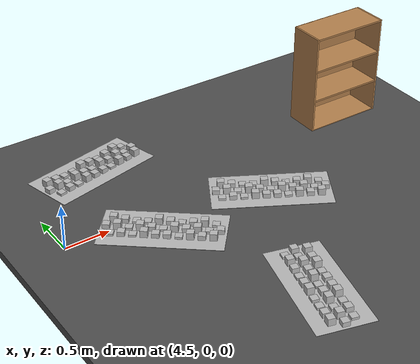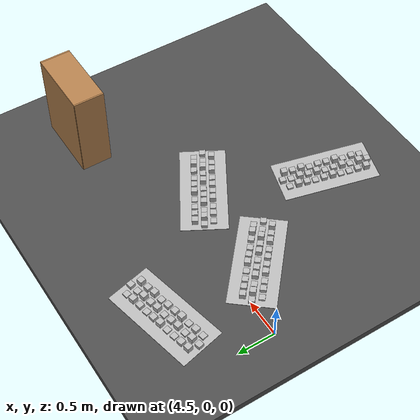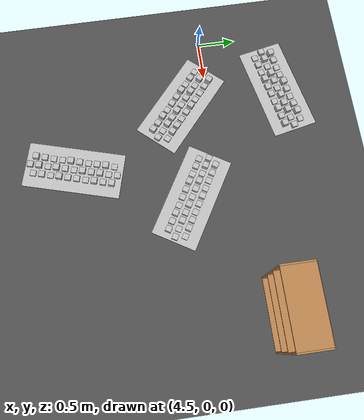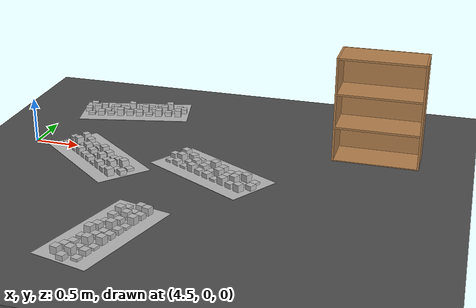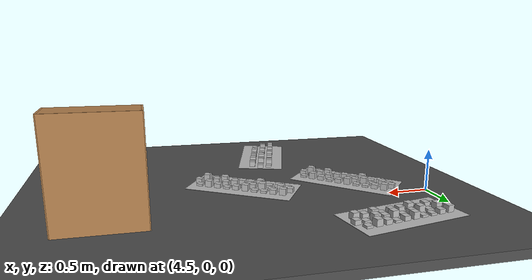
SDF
<sdf version="1.6">
 <world name="default">
  <model name="ground_plane">
   <static>1</static>
   <link name="link">
    <collision name="collision">
     <geometry><plane><normal>0 0 1</normal><size>100 100</size></plane></geometry>
     <surface>
      <contact><collide_bitmask>65535</collide_bitmask></contact>
      <friction><ode><mu>100</mu><mu2>50</mu2></ode></friction>
     </surface>
    </collision>
    <visual name="visual">
     <cast_shadows>0</cast_shadows>
     <geometry><plane><normal>0 0 1</normal><size>100 100</size></plane></geometry>
     <material>
      <script><uri>file://media/materials/scripts/gazebo.material</uri><name>Gazebo/Grey</name></script>
     </material>
    </visual>
   </link>
  </model>
  <model name="frc2016_roughterrain_clone_2_clone_clone_2">
   <static>1</static>
   <link name="link">
    <visual name="platform">
     <pose>0 0 0.08269 0 -0 0</pose>
     <geometry><box><size>1.27 0.5969 0.003175</size></box></geometry>
    </visual>
    <collision name="platform">
     <pose>0 0 0.08269 0 -0 0</pose>
     <geometry><box><size>1.27 0.5969 0.003175</size></box></geometry>
    </collision>
    <visual name="row1_block1_sm">
     <pose>0.51435 0.1143 0.09698 0 -0 0</pose>
     <geometry><box><size>0.0762 0.0762 0.0254</size></box></geometry>
    </visual>
    <collision name="row1_block1_sm">
     <pose>0.51435 0.1143 0.09698 0 -0 0</pose>
     <geometry><box><size>0.0762 0.0762 0.0254</size></box></geometry>
    </collision>
    <visual name="row1_block2_lg">
     <pose>0.40005 0.1143 0.12238 0 -0 0</pose>
     <geometry><box><size>0.0762 0.0762 0.0762</size></box></geometry>
    </visual>
    <collision name="row1_block2_lg">
     <pose>0.40005 0.1143 0.12238 0 -0 0</pose>
     <geometry><box><size>0.0762 0.0762 0.0762</size></box></geometry>
    </collision>
    <visual name="row1_block3_md">
     <pose>0.28575 0.1143 0.10968 0 -0 0</pose>
     <geometry><box><size>0.0762 0.0762 0.0508</size></box></geometry>
    </visual>
    <collision name="row1_block3_md">
     <pose>0.28575 0.1143 0.10968 0 -0 0</pose>
     <geometry><box><size>0.0762 0.0762 0.0508</size></box></geometry>
    </collision>
    <visual name="row1_block4_sm">
     <pose>0.17145 0.1143 0.09698 0 -0 0</pose>
     <geometry><box><size>0.0762 0.0762 0.0254</size></box></geometry>
    </visual>
    <collision name="row1_block4_sm">
     <pose>0.17145 0.1143 0.09698 0 -0 0</pose>
     <geometry><box><size>0.0762 0.0762 0.0254</size></box></geometry>
    </collision>
    <visual name="row1_block5_md">
     <pose>0.05715 0.1143 0.10968 0 -0 0</pose>
     <geometry><box><size>0.0762 0.0762 0.0508</size></box></geometry>
    </visual>
    <collision name="row1_block5_md">
     <pose>0.05715 0.1143 0.10968 0 -0 0</pose>
     <geometry><box><size>0.0762 0.0762 0.0508</size></box></geometry>
    </collision>
    <visual name="row1_block6_lg">
     <pose>-0.05715 0.1143 0.12238 0 -0 0</pose>
     <geometry><box><size>0.0762 0.0762 0.0762</size></box></geometry>
    </visual>
    <collision name="row1_block6_lg">
     <pose>-0.05715 0.1143 0.12238 0 -0 0</pose>
     <geometry><box><size>0.0762 0.0762 0.0762</size></box></geometry>
    </collision>
    <visual name="row1_block7_sm">
     <pose>-0.17145 0.1143 0.09698 0 -0 0</pose>
     <geometry><box><size>0.0762 0.0762 0.0254</size></box></geometry>
    </visual>
    <collision name="row1_block7_sm">
     <pose>-0.17145 0.1143 0.09698 0 -0 0</pose>
     <geometry><box><size>0.0762 0.0762 0.0254</size></box></geometry>
    </collision>
    <visual name="row1_block8_sm">
     <pose>-0.28575 0.1143 0.09698 0 -0 0</pose>
     <geometry><box><size>0.0762 0.0762 0.0254</size></box></geometry>
    </visual>
    <collision name="row1_block8_sm">
     <pose>-0.28575 0.1143 0.09698 0 -0 0</pose>
     <geometry><box><size>0.0762 0.0762 0.0254</size></box></geometry>
    </collision>
    <visual name="row1_block9_md">
     <pose>-0.40005 0.1143 0.10968 0 -0 0</pose>
     <geometry><box><size>0.0762 0.0762 0.0508</size></box></geometry>
    </visual>
    <collision name="row1_block9_md">
     <pose>-0.40005 0.1143 0.10968 0 -0 0</pose>
     <geometry><box><size>0.0762 0.0762 0.0508</size></box></geometry>
    </collision>
    <visual name="row1_block10_lg">
     <pose>-0.51435 0.1143 0.12238 0 -0 0</pose>
     <geometry><box><size>0.0762 0.0762 0.0762</size></box></geometry>
    </visual>
    <collision name="row1_block10_lg">
     <pose>-0.51435 0.1143 0.12238 0 -0 0</pose>
     <geometry><box><size>0.0762 0.0762 0.0762</size></box></geometry>
    </collision>
    <visual name="row2_block1_md">
     <pose>0.5715 0 0.10968 0 -0 0</pose>
     <geometry><box><size>0.0762 0.0762 0.0508</size></box></geometry>
    </visual>
    <collision name="row2_block1_md">
     <pose>0.5715 0 0.10968 0 -0 0</pose>
     <geometry><box><size>0.0762 0.0762 0.0508</size></box></geometry>
    </collision>
    <visual name="row2_block2_sm">
     <pose>0.4572 0 0.09698 0 -0 0</pose>
     <geometry><box><size>0.0762 0.0762 0.0254</size></box></geometry>
    </visual>
    <collision name="row2_block2_sm">
     <pose>0.4572 0 0.09698 0 -0 0</pose>
     <geometry><box><size>0.0762 0.0762 0.0254</size></box></geometry>
    </collision>
    <visual name="row2_block3_lg">
     <pose>0.3429 0 0.12238 0 -0 0</pose>
     <geometry><box><size>0.0762 0.0762 0.0762</size></box></geometry>
    </visual>
    <collision name="row2_block3_lg">
     <pose>0.3429 0 0.12238 0 -0 0</pose>
     <geometry><box><size>0.0762 0.0762 0.0762</size></box></geometry>
    </collision>
    <visual name="row2_block4_md">
     <pose>0.2286 0 0.10968 0 -0 0</pose>
     <geometry><box><size>0.0762 0.0762 0.0508</size></box></geometry>
    </visual>
    <collision name="row2_block4_md">
     <pose>0.2286 0 0.10968 0 -0 0</pose>
     <geometry><box><size>0.0762 0.0762 0.0508</size></box></geometry>
    </collision>
    <visual name="row2_block5_lg">
     <pose>0.1143 0 0.12238 0 -0 0</pose>
     <geometry><box><size>0.0762 0.0762 0.0762</size></box></geometry>
    </visual>
    <collision name="row2_block5_lg">
     <pose>0.1143 0 0.12238 0 -0 0</pose>
     <geometry><box><size>0.0762 0.0762 0.0762</size></box></geometry>
    </collision>
    <visual name="row2_block6_sm">
     <pose>0 0 0.09698 0 -0 0</pose>
     <geometry><box><size>0.0762 0.0762 0.0254</size></box></geometry>
    </visual>
    <collision name="row2_block6_sm">
     <pose>0 0 0.09698 0 -0 0</pose>
     <geometry><box><size>0.0762 0.0762 0.0254</size></box></geometry>
    </collision>
    <visual name="row2_block7_md">
     <pose>-0.1143 0 0.10968 0 -0 0</pose>
     <geometry><box><size>0.0762 0.0762 0.0508</size></box></geometry>
    </visual>
    <collision name="row2_block7_md">
     <pose>-0.1143 0 0.10968 0 -0 0</pose>
     <geometry><box><size>0.0762 0.0762 0.0508</size></box></geometry>
    </collision>
    <visual name="row2_block8_lg">
     <pose>-0.2286 0 0.12238 0 -0 0</pose>
     <geometry><box><size>0.0762 0.0762 0.0762</size></box></geometry>
    </visual>
    <collision name="row2_block8_lg">
     <pose>-0.2286 0 0.12238 0 -0 0</pose>
     <geometry><box><size>0.0762 0.0762 0.0762</size></box></geometry>
    </collision>
    <visual name="row2_block9_sm">
     <pose>-0.3429 0 0.09698 0 -0 0</pose>
     <geometry><box><size>0.0762 0.0762 0.0254</size></box></geometry>
    </visual>
    <collision name="row2_block9_sm">
     <pose>-0.3429 0 0.09698 0 -0 0</pose>
     <geometry><box><size>0.0762 0.0762 0.0254</size></box></geometry>
    </collision>
    <visual name="row2_block10_lg">
     <pose>-0.4572 0 0.12238 0 -0 0</pose>
     <geometry><box><size>0.0762 0.0762 0.0762</size></box></geometry>
    </visual>
    <collision name="row2_block10_lg">
     <pose>-0.4572 0 0.12238 0 -0 0</pose>
     <geometry><box><size>0.0762 0.0762 0.0762</size></box></geometry>
    </collision>
    <visual name="row2_block11_md">
     <pose>-0.5715 0 0.10968 0 -0 0</pose>
     <geometry><box><size>0.0762 0.0762 0.0508</size></box></geometry>
    </visual>
    <collision name="row2_block11_md">
     <pose>-0.5715 0 0.10968 0 -0 0</pose>
     <geometry><box><size>0.0762 0.0762 0.0508</size></box></geometry>
    </collision>
    <visual name="row3_block1_lg">
     <pose>0.51435 -0.1143 0.12238 0 -0 0</pose>
     <geometry><box><size>0.0762 0.0762 0.0762</size></box></geometry>
    </visual>
    <collision name="row3_block1_lg">
     <pose>0.51435 -0.1143 0.12238 0 -0 0</pose>
     <geometry><box><size>0.0762 0.0762 0.0762</size></box></geometry>
    </collision>
    <visual name="row3_block2_md">
     <pose>0.40005 -0.1143 0.10968 0 -0 0</pose>
     <geometry><box><size>0.0762 0.0762 0.0508</size></box></geometry>
    </visual>
    <collision name="row3_block2_md">
     <pose>0.40005 -0.1143 0.10968 0 -0 0</pose>
     <geometry><box><size>0.0762 0.0762 0.0508</size></box></geometry>
    </collision>
    <visual name="row3_block3_lg">
     <pose>0.28575 -0.1143 0.12238 0 -0 0</pose>
     <geometry><box><size>0.0762 0.0762 0.0762</size></box></geometry>
    </visual>
    <collision name="row3_block3_lg">
     <pose>0.28575 -0.1143 0.12238 0 -0 0</pose>
     <geometry><box><size>0.0762 0.0762 0.0762</size></box></geometry>
    </collision>
    <visual name="row3_block4_sm">
     <pose>0.17145 -0.1143 0.09698 0 -0 0</pose>
     <geometry><box><size>0.0762 0.0762 0.0254</size></box></geometry>
    </visual>
    <collision name="row3_block4_sm">
     <pose>0.17145 -0.1143 0.09698 0 -0 0</pose>
     <geometry><box><size>0.0762 0.0762 0.0254</size></box></geometry>
    </collision>
    <visual name="row3_block5_md">
     <pose>0.05715 -0.1143 0.10968 0 -0 0</pose>
     <geometry><box><size>0.0762 0.0762 0.0508</size></box></geometry>
    </visual>
    <collision name="row3_block5_md">
     <pose>0.05715 -0.1143 0.10968 0 -0 0</pose>
     <geometry><box><size>0.0762 0.0762 0.0508</size></box></geometry>
    </collision>
    <visual name="row3_block6_md">
     <pose>-0.05715 -0.1143 0.10968 0 -0 0</pose>
     <geometry><box><size>0.0762 0.0762 0.0508</size></box></geometry>
    </visual>
    <collision name="row3_block6_md">
     <pose>-0.05715 -0.1143 0.10968 0 -0 0</pose>
     <geometry><box><size>0.0762 0.0762 0.0508</size></box></geometry>
    </collision>
    <visual name="row3_block7_lg">
     <pose>-0.17145 -0.1143 0.12238 0 -0 0</pose>
     <geometry><box><size>0.0762 0.0762 0.0762</size></box></geometry>
    </visual>
    <collision name="row3_block7_lg">
     <pose>-0.17145 -0.1143 0.12238 0 -0 0</pose>
     <geometry><box><size>0.0762 0.0762 0.0762</size></box></geometry>
    </collision>
    <visual name="row3_block8_sm">
     <pose>-0.28575 -0.1143 0.09698 0 -0 0</pose>
     <geometry><box><size>0.0762 0.0762 0.0254</size></box></geometry>
    </visual>
    <collision name="row3_block8_sm">
     <pose>-0.28575 -0.1143 0.09698 0 -0 0</pose>
     <geometry><box><size>0.0762 0.0762 0.0254</size></box></geometry>
    </collision>
    <visual name="row3_block9_md">
     <pose>-0.40005 -0.1143 0.10968 0 -0 0</pose>
     <geometry><box><size>0.0762 0.0762 0.0508</size></box></geometry>
    </visual>
    <collision name="row3_block9_md">
     <pose>-0.40005 -0.1143 0.10968 0 -0 0</pose>
     <geometry><box><size>0.0762 0.0762 0.0508</size></box></geometry>
    </collision>
    <visual name="row3_block10_sm">
     <pose>-0.51435 -0.1143 0.09698 0 -0 0</pose>
     <geometry><box><size>0.0762 0.0762 0.0254</size></box></geometry>
    </visual>
    <collision name="row3_block10_sm">
     <pose>-0.51435 -0.1143 0.09698 0 -0 0</pose>
     <geometry><box><size>0.0762 0.0762 0.0254</size></box></geometry>
    </collision>
   </link>
   <pose>6.12707 -1.89244 0 -0.016637 0.033285 1.30479</pose>
  </model>
  <model name="bookshelf_1">
   <static>1</static>
   <link name="link">
    <inertial><mass>1</mass></inertial>
    <collision name="back">
     <pose>0 0.005 0.6 0 -0 0</pose>
     <geometry><box><size>0.9 0.01 1.2</size></box></geometry>
    </collision>
    <visual name="visual1">
     <pose>0 0.005 0.6 0 -0 0</pose>
     <geometry><box><size>0.9 0.01 1.2</size></box></geometry>
     <material>
      <script><uri>file://media/materials/scripts/gazebo.material</uri><name>Gazebo/Wood</name></script>
     </material>
    </visual>
    <collision name="left_side">
     <pose>0.45 -0.195 0.6 0 -0 0</pose>
     <geometry><box><size>0.02 0.4 1.2</size></box></geometry>
    </collision>
    <visual name="visual2">
     <pose>0.45 -0.195 0.6 0 -0 0</pose>
     <geometry><box><size>0.02 0.4 1.2</size></box></geometry>
     <material>
      <script><uri>file://media/materials/scripts/gazebo.material</uri><name>Gazebo/Wood</name></script>
     </material>
    </visual>
    <collision name="right_side">
     <pose>-0.45 -0.195 0.6 0 -0 0</pose>
     <geometry><box><size>0.02 0.4 1.2</size></box></geometry>
    </collision>
    <visual name="visual3">
     <pose>-0.45 -0.195 0.6 0 -0 0</pose>
     <geometry><box><size>0.02 0.4 1.2</size></box></geometry>
     <material>
      <script><uri>file://media/materials/scripts/gazebo.material</uri><name>Gazebo/Wood</name></script>
     </material>
    </visual>
    <collision name="bottom">
     <pose>0 -0.195 0.03 0 -0 0</pose>
     <geometry><box><size>0.88 0.4 0.06</size></box></geometry>
    </collision>
    <visual name="visual4">
     <pose>0 -0.195 0.03 0 -0 0</pose>
     <geometry><box><size>0.88 0.4 0.06</size></box></geometry>
     <material>
      <script><uri>file://media/materials/scripts/gazebo.material</uri><name>Gazebo/Wood</name></script>
     </material>
    </visual>
    <collision name="top">
     <pose>0 -0.195 1.19 0 -0 0</pose>
     <geometry><box><size>0.88 0.4 0.02</size></box></geometry>
    </collision>
    <visual name="visual5">
     <pose>0 -0.195 1.19 0 -0 0</pose>
     <geometry><box><size>0.88 0.4 0.02</size></box></geometry>
     <material>
      <script><uri>file://media/materials/scripts/gazebo.material</uri><name>Gazebo/Wood</name></script>
     </material>
    </visual>
    <collision name="low_shelf">
     <pose>0 -0.195 0.43 0 -0 0</pose>
     <geometry><box><size>0.88 0.4 0.02</size></box></geometry>
    </collision>
    <visual name="visual6">
     <pose>0 -0.195 0.43 0 -0 0</pose>
     <geometry><box><size>0.88 0.4 0.02</size></box></geometry>
     <material>
      <script><uri>file://media/materials/scripts/gazebo.material</uri><name>Gazebo/Wood</name></script>
     </material>
    </visual>
    <collision name="high_shelf">
     <pose>0 -0.195 0.8 0 -0 0</pose>
     <geometry><box><size>0.88 0.4 0.02</size></box></geometry>
    </collision>
    <visual name="visual7">
     <pose>0 -0.195 0.8 0 -0 0</pose>
     <geometry><box><size>0.88 0.4 0.02</size></box></geometry>
     <material>
      <script><uri>file://media/materials/scripts/gazebo.material</uri><name>Gazebo/Wood</name></script>
     </material>
    </visual>
   </link>
   <pose>8.28108 0.686251 0 0 -0 0</pose>
  </model>
  <model name="frc2016_roughterrain_clone_2_clone_clone_0_clone">
   <static>1</static>
   <link name="link">
    <visual name="platform">
     <pose>0 0 0.08269 0 -0 0</pose>
     <geometry><box><size>1.27 0.5969 0.003175</size></box></geometry>
    </visual>
    <collision name="platform">
     <pose>0 0 0.08269 0 -0 0</pose>
     <geometry><box><size>1.27 0.5969 0.003175</size></box></geometry>
    </collision>
    <visual name="row1_block1_sm">
     <pose>0.51435 0.1143 0.09698 0 -0 0</pose>
     <geometry><box><size>0.0762 0.0762 0.0254</size></box></geometry>
    </visual>
    <collision name="row1_block1_sm">
     <pose>0.51435 0.1143 0.09698 0 -0 0</pose>
     <geometry><box><size>0.0762 0.0762 0.0254</size></box></geometry>
    </collision>
    <visual name="row1_block2_lg">
     <pose>0.40005 0.1143 0.12238 0 -0 0</pose>
     <geometry><box><size>0.0762 0.0762 0.0762</size></box></geometry>
    </visual>
    <collision name="row1_block2_lg">
     <pose>0.40005 0.1143 0.12238 0 -0 0</pose>
     <geometry><box><size>0.0762 0.0762 0.0762</size></box></geometry>
    </collision>
    <visual name="row1_block3_md">
     <pose>0.28575 0.1143 0.10968 0 -0 0</pose>
     <geometry><box><size>0.0762 0.0762 0.0508</size></box></geometry>
    </visual>
    <collision name="row1_block3_md">
     <pose>0.28575 0.1143 0.10968 0 -0 0</pose>
     <geometry><box><size>0.0762 0.0762 0.0508</size></box></geometry>
    </collision>
    <visual name="row1_block4_sm">
     <pose>0.17145 0.1143 0.09698 0 -0 0</pose>
     <geometry><box><size>0.0762 0.0762 0.0254</size></box></geometry>
    </visual>
    <collision name="row1_block4_sm">
     <pose>0.17145 0.1143 0.09698 0 -0 0</pose>
     <geometry><box><size>0.0762 0.0762 0.0254</size></box></geometry>
    </collision>
    <visual name="row1_block5_md">
     <pose>0.05715 0.1143 0.10968 0 -0 0</pose>
     <geometry><box><size>0.0762 0.0762 0.0508</size></box></geometry>
    </visual>
    <collision name="row1_block5_md">
     <pose>0.05715 0.1143 0.10968 0 -0 0</pose>
     <geometry><box><size>0.0762 0.0762 0.0508</size></box></geometry>
    </collision>
    <visual name="row1_block6_lg">
     <pose>-0.05715 0.1143 0.12238 0 -0 0</pose>
     <geometry><box><size>0.0762 0.0762 0.0762</size></box></geometry>
    </visual>
    <collision name="row1_block6_lg">
     <pose>-0.05715 0.1143 0.12238 0 -0 0</pose>
     <geometry><box><size>0.0762 0.0762 0.0762</size></box></geometry>
    </collision>
    <visual name="row1_block7_sm">
     <pose>-0.17145 0.1143 0.09698 0 -0 0</pose>
     <geometry><box><size>0.0762 0.0762 0.0254</size></box></geometry>
    </visual>
    <collision name="row1_block7_sm">
     <pose>-0.17145 0.1143 0.09698 0 -0 0</pose>
     <geometry><box><size>0.0762 0.0762 0.0254</size></box></geometry>
    </collision>
    <visual name="row1_block8_sm">
     <pose>-0.28575 0.1143 0.09698 0 -0 0</pose>
     <geometry><box><size>0.0762 0.0762 0.0254</size></box></geometry>
    </visual>
    <collision name="row1_block8_sm">
     <pose>-0.28575 0.1143 0.09698 0 -0 0</pose>
     <geometry><box><size>0.0762 0.0762 0.0254</size></box></geometry>
    </collision>
    <visual name="row1_block9_md">
     <pose>-0.40005 0.1143 0.10968 0 -0 0</pose>
     <geometry><box><size>0.0762 0.0762 0.0508</size></box></geometry>
    </visual>
    <collision name="row1_block9_md">
     <pose>-0.40005 0.1143 0.10968 0 -0 0</pose>
     <geometry><box><size>0.0762 0.0762 0.0508</size></box></geometry>
    </collision>
    <visual name="row1_block10_lg">
     <pose>-0.51435 0.1143 0.12238 0 -0 0</pose>
     <geometry><box><size>0.0762 0.0762 0.0762</size></box></geometry>
    </visual>
    <collision name="row1_block10_lg">
     <pose>-0.51435 0.1143 0.12238 0 -0 0</pose>
     <geometry><box><size>0.0762 0.0762 0.0762</size></box></geometry>
    </collision>
    <visual name="row2_block1_md">
     <pose>0.5715 0 0.10968 0 -0 0</pose>
     <geometry><box><size>0.0762 0.0762 0.0508</size></box></geometry>
    </visual>
    <collision name="row2_block1_md">
     <pose>0.5715 0 0.10968 0 -0 0</pose>
     <geometry><box><size>0.0762 0.0762 0.0508</size></box></geometry>
    </collision>
    <visual name="row2_block2_sm">
     <pose>0.4572 0 0.09698 0 -0 0</pose>
     <geometry><box><size>0.0762 0.0762 0.0254</size></box></geometry>
    </visual>
    <collision name="row2_block2_sm">
     <pose>0.4572 0 0.09698 0 -0 0</pose>
     <geometry><box><size>0.0762 0.0762 0.0254</size></box></geometry>
    </collision>
    <visual name="row2_block3_lg">
     <pose>0.3429 0 0.12238 0 -0 0</pose>
     <geometry><box><size>0.0762 0.0762 0.0762</size></box></geometry>
    </visual>
    <collision name="row2_block3_lg">
     <pose>0.3429 0 0.12238 0 -0 0</pose>
     <geometry><box><size>0.0762 0.0762 0.0762</size></box></geometry>
    </collision>
    <visual name="row2_block4_md">
     <pose>0.2286 0 0.10968 0 -0 0</pose>
     <geometry><box><size>0.0762 0.0762 0.0508</size></box></geometry>
    </visual>
    <collision name="row2_block4_md">
     <pose>0.2286 0 0.10968 0 -0 0</pose>
     <geometry><box><size>0.0762 0.0762 0.0508</size></box></geometry>
    </collision>
    <visual name="row2_block5_lg">
     <pose>0.1143 0 0.12238 0 -0 0</pose>
     <geometry><box><size>0.0762 0.0762 0.0762</size></box></geometry>
    </visual>
    <collision name="row2_block5_lg">
     <pose>0.1143 0 0.12238 0 -0 0</pose>
     <geometry><box><size>0.0762 0.0762 0.0762</size></box></geometry>
    </collision>
    <visual name="row2_block6_sm">
     <pose>0 0 0.09698 0 -0 0</pose>
     <geometry><box><size>0.0762 0.0762 0.0254</size></box></geometry>
    </visual>
    <collision name="row2_block6_sm">
     <pose>0 0 0.09698 0 -0 0</pose>
     <geometry><box><size>0.0762 0.0762 0.0254</size></box></geometry>
    </collision>
    <visual name="row2_block7_md">
     <pose>-0.1143 0 0.10968 0 -0 0</pose>
     <geometry><box><size>0.0762 0.0762 0.0508</size></box></geometry>
    </visual>
    <collision name="row2_block7_md">
     <pose>-0.1143 0 0.10968 0 -0 0</pose>
     <geometry><box><size>0.0762 0.0762 0.0508</size></box></geometry>
    </collision>
    <visual name="row2_block8_lg">
     <pose>-0.2286 0 0.12238 0 -0 0</pose>
     <geometry><box><size>0.0762 0.0762 0.0762</size></box></geometry>
    </visual>
    <collision name="row2_block8_lg">
     <pose>-0.2286 0 0.12238 0 -0 0</pose>
     <geometry><box><size>0.0762 0.0762 0.0762</size></box></geometry>
    </collision>
    <visual name="row2_block9_sm">
     <pose>-0.3429 0 0.09698 0 -0 0</pose>
     <geometry><box><size>0.0762 0.0762 0.0254</size></box></geometry>
    </visual>
    <collision name="row2_block9_sm">
     <pose>-0.3429 0 0.09698 0 -0 0</pose>
     <geometry><box><size>0.0762 0.0762 0.0254</size></box></geometry>
    </collision>
    <visual name="row2_block10_lg">
     <pose>-0.4572 0 0.12238 0 -0 0</pose>
     <geometry><box><size>0.0762 0.0762 0.0762</size></box></geometry>
    </visual>
    <collision name="row2_block10_lg">
     <pose>-0.4572 0 0.12238 0 -0 0</pose>
     <geometry><box><size>0.0762 0.0762 0.0762</size></box></geometry>
    </collision>
    <visual name="row2_block11_md">
     <pose>-0.5715 0 0.10968 0 -0 0</pose>
     <geometry><box><size>0.0762 0.0762 0.0508</size></box></geometry>
    </visual>
    <collision name="row2_block11_md">
     <pose>-0.5715 0 0.10968 0 -0 0</pose>
     <geometry><box><size>0.0762 0.0762 0.0508</size></box></geometry>
    </collision>
    <visual name="row3_block1_lg">
     <pose>0.51435 -0.1143 0.12238 0 -0 0</pose>
     <geometry><box><size>0.0762 0.0762 0.0762</size></box></geometry>
    </visual>
    <collision name="row3_block1_lg">
     <pose>0.51435 -0.1143 0.12238 0 -0 0</pose>
     <geometry><box><size>0.0762 0.0762 0.0762</size></box></geometry>
    </collision>
    <visual name="row3_block2_md">
     <pose>0.40005 -0.1143 0.10968 0 -0 0</pose>
     <geometry><box><size>0.0762 0.0762 0.0508</size></box></geometry>
    </visual>
    <collision name="row3_block2_md">
     <pose>0.40005 -0.1143 0.10968 0 -0 0</pose>
     <geometry><box><size>0.0762 0.0762 0.0508</size></box></geometry>
    </collision>
    <visual name="row3_block3_lg">
     <pose>0.28575 -0.1143 0.12238 0 -0 0</pose>
     <geometry><box><size>0.0762 0.0762 0.0762</size></box></geometry>
    </visual>
    <collision name="row3_block3_lg">
     <pose>0.28575 -0.1143 0.12238 0 -0 0</pose>
     <geometry><box><size>0.0762 0.0762 0.0762</size></box></geometry>
    </collision>
    <visual name="row3_block4_sm">
     <pose>0.17145 -0.1143 0.09698 0 -0 0</pose>
     <geometry><box><size>0.0762 0.0762 0.0254</size></box></geometry>
    </visual>
    <collision name="row3_block4_sm">
     <pose>0.17145 -0.1143 0.09698 0 -0 0</pose>
     <geometry><box><size>0.0762 0.0762 0.0254</size></box></geometry>
    </collision>
    <visual name="row3_block5_md">
     <pose>0.05715 -0.1143 0.10968 0 -0 0</pose>
     <geometry><box><size>0.0762 0.0762 0.0508</size></box></geometry>
    </visual>
    <collision name="row3_block5_md">
     <pose>0.05715 -0.1143 0.10968 0 -0 0</pose>
     <geometry><box><size>0.0762 0.0762 0.0508</size></box></geometry>
    </collision>
    <visual name="row3_block6_md">
     <pose>-0.05715 -0.1143 0.10968 0 -0 0</pose>
     <geometry><box><size>0.0762 0.0762 0.0508</size></box></geometry>
    </visual>
    <collision name="row3_block6_md">
     <pose>-0.05715 -0.1143 0.10968 0 -0 0</pose>
     <geometry><box><size>0.0762 0.0762 0.0508</size></box></geometry>
    </collision>
    <visual name="row3_block7_lg">
     <pose>-0.17145 -0.1143 0.12238 0 -0 0</pose>
     <geometry><box><size>0.0762 0.0762 0.0762</size></box></geometry>
    </visual>
    <collision name="row3_block7_lg">
     <pose>-0.17145 -0.1143 0.12238 0 -0 0</pose>
     <geometry><box><size>0.0762 0.0762 0.0762</size></box></geometry>
    </collision>
    <visual name="row3_block8_sm">
     <pose>-0.28575 -0.1143 0.09698 0 -0 0</pose>
     <geometry><box><size>0.0762 0.0762 0.0254</size></box></geometry>
    </visual>
    <collision name="row3_block8_sm">
     <pose>-0.28575 -0.1143 0.09698 0 -0 0</pose>
     <geometry><box><size>0.0762 0.0762 0.0254</size></box></geometry>
    </collision>
    <visual name="row3_block9_md">
     <pose>-0.40005 -0.1143 0.10968 0 -0 0</pose>
     <geometry><box><size>0.0762 0.0762 0.0508</size></box></geometry>
    </visual>
    <collision name="row3_block9_md">
     <pose>-0.40005 -0.1143 0.10968 0 -0 0</pose>
     <geometry><box><size>0.0762 0.0762 0.0508</size></box></geometry>
    </collision>
    <visual name="row3_block10_sm">
     <pose>-0.51435 -0.1143 0.09698 0 -0 0</pose>
     <geometry><box><size>0.0762 0.0762 0.0254</size></box></geometry>
    </visual>
    <collision name="row3_block10_sm">
     <pose>-0.51435 -0.1143 0.09698 0 -0 0</pose>
     <geometry><box><size>0.0762 0.0762 0.0254</size></box></geometry>
    </collision>
   </link>
   <pose>5.40477 -0.374463 0 -0.022852 -0.029369 -0.711774</pose>
  </model>
  <model name="frc2016_roughterrain_clone_2_clone_clone_3_clone_0">
   <static>1</static>
   <link name="link">
    <visual name="platform">
     <pose>0 0 0.08269 0 -0 0</pose>
     <geometry><box><size>1.27 0.5969 0.003175</size></box></geometry>
    </visual>
    <collision name="platform">
     <pose>0 0 0.08269 0 -0 0</pose>
     <geometry><box><size>1.27 0.5969 0.003175</size></box></geometry>
    </collision>
    <visual name="row1_block1_sm">
     <pose>0.51435 0.1143 0.09698 0 -0 0</pose>
     <geometry><box><size>0.0762 0.0762 0.0254</size></box></geometry>
    </visual>
    <collision name="row1_block1_sm">
     <pose>0.51435 0.1143 0.09698 0 -0 0</pose>
     <geometry><box><size>0.0762 0.0762 0.0254</size></box></geometry>
    </collision>
    <visual name="row1_block2_lg">
     <pose>0.40005 0.1143 0.12238 0 -0 0</pose>
     <geometry><box><size>0.0762 0.0762 0.0762</size></box></geometry>
    </visual>
    <collision name="row1_block2_lg">
     <pose>0.40005 0.1143 0.12238 0 -0 0</pose>
     <geometry><box><size>0.0762 0.0762 0.0762</size></box></geometry>
    </collision>
    <visual name="row1_block3_md">
     <pose>0.28575 0.1143 0.10968 0 -0 0</pose>
     <geometry><box><size>0.0762 0.0762 0.0508</size></box></geometry>
    </visual>
    <collision name="row1_block3_md">
     <pose>0.28575 0.1143 0.10968 0 -0 0</pose>
     <geometry><box><size>0.0762 0.0762 0.0508</size></box></geometry>
    </collision>
    <visual name="row1_block4_sm">
     <pose>0.17145 0.1143 0.09698 0 -0 0</pose>
     <geometry><box><size>0.0762 0.0762 0.0254</size></box></geometry>
    </visual>
    <collision name="row1_block4_sm">
     <pose>0.17145 0.1143 0.09698 0 -0 0</pose>
     <geometry><box><size>0.0762 0.0762 0.0254</size></box></geometry>
    </collision>
    <visual name="row1_block5_md">
     <pose>0.05715 0.1143 0.10968 0 -0 0</pose>
     <geometry><box><size>0.0762 0.0762 0.0508</size></box></geometry>
    </visual>
    <collision name="row1_block5_md">
     <pose>0.05715 0.1143 0.10968 0 -0 0</pose>
     <geometry><box><size>0.0762 0.0762 0.0508</size></box></geometry>
    </collision>
    <visual name="row1_block6_lg">
     <pose>-0.05715 0.1143 0.12238 0 -0 0</pose>
     <geometry><box><size>0.0762 0.0762 0.0762</size></box></geometry>
    </visual>
    <collision name="row1_block6_lg">
     <pose>-0.05715 0.1143 0.12238 0 -0 0</pose>
     <geometry><box><size>0.0762 0.0762 0.0762</size></box></geometry>
    </collision>
    <visual name="row1_block7_sm">
     <pose>-0.17145 0.1143 0.09698 0 -0 0</pose>
     <geometry><box><size>0.0762 0.0762 0.0254</size></box></geometry>
    </visual>
    <collision name="row1_block7_sm">
     <pose>-0.17145 0.1143 0.09698 0 -0 0</pose>
     <geometry><box><size>0.0762 0.0762 0.0254</size></box></geometry>
    </collision>
    <visual name="row1_block8_sm">
     <pose>-0.28575 0.1143 0.09698 0 -0 0</pose>
     <geometry><box><size>0.0762 0.0762 0.0254</size></box></geometry>
    </visual>
    <collision name="row1_block8_sm">
     <pose>-0.28575 0.1143 0.09698 0 -0 0</pose>
     <geometry><box><size>0.0762 0.0762 0.0254</size></box></geometry>
    </collision>
    <visual name="row1_block9_md">
     <pose>-0.40005 0.1143 0.10968 0 -0 0</pose>
     <geometry><box><size>0.0762 0.0762 0.0508</size></box></geometry>
    </visual>
    <collision name="row1_block9_md">
     <pose>-0.40005 0.1143 0.10968 0 -0 0</pose>
     <geometry><box><size>0.0762 0.0762 0.0508</size></box></geometry>
    </collision>
    <visual name="row1_block10_lg">
     <pose>-0.51435 0.1143 0.12238 0 -0 0</pose>
     <geometry><box><size>0.0762 0.0762 0.0762</size></box></geometry>
    </visual>
    <collision name="row1_block10_lg">
     <pose>-0.51435 0.1143 0.12238 0 -0 0</pose>
     <geometry><box><size>0.0762 0.0762 0.0762</size></box></geometry>
    </collision>
    <visual name="row2_block1_md">
     <pose>0.5715 0 0.10968 0 -0 0</pose>
     <geometry><box><size>0.0762 0.0762 0.0508</size></box></geometry>
    </visual>
    <collision name="row2_block1_md">
     <pose>0.5715 0 0.10968 0 -0 0</pose>
     <geometry><box><size>0.0762 0.0762 0.0508</size></box></geometry>
    </collision>
    <visual name="row2_block2_sm">
     <pose>0.4572 0 0.09698 0 -0 0</pose>
     <geometry><box><size>0.0762 0.0762 0.0254</size></box></geometry>
    </visual>
    <collision name="row2_block2_sm">
     <pose>0.4572 0 0.09698 0 -0 0</pose>
     <geometry><box><size>0.0762 0.0762 0.0254</size></box></geometry>
    </collision>
    <visual name="row2_block3_lg">
     <pose>0.3429 0 0.12238 0 -0 0</pose>
     <geometry><box><size>0.0762 0.0762 0.0762</size></box></geometry>
    </visual>
    <collision name="row2_block3_lg">
     <pose>0.3429 0 0.12238 0 -0 0</pose>
     <geometry><box><size>0.0762 0.0762 0.0762</size></box></geometry>
    </collision>
    <visual name="row2_block4_md">
     <pose>0.2286 0 0.10968 0 -0 0</pose>
     <geometry><box><size>0.0762 0.0762 0.0508</size></box></geometry>
    </visual>
    <collision name="row2_block4_md">
     <pose>0.2286 0 0.10968 0 -0 0</pose>
     <geometry><box><size>0.0762 0.0762 0.0508</size></box></geometry>
    </collision>
    <visual name="row2_block5_lg">
     <pose>0.1143 0 0.12238 0 -0 0</pose>
     <geometry><box><size>0.0762 0.0762 0.0762</size></box></geometry>
    </visual>
    <collision name="row2_block5_lg">
     <pose>0.1143 0 0.12238 0 -0 0</pose>
     <geometry><box><size>0.0762 0.0762 0.0762</size></box></geometry>
    </collision>
    <visual name="row2_block6_sm">
     <pose>0 0 0.09698 0 -0 0</pose>
     <geometry><box><size>0.0762 0.0762 0.0254</size></box></geometry>
    </visual>
    <collision name="row2_block6_sm">
     <pose>0 0 0.09698 0 -0 0</pose>
     <geometry><box><size>0.0762 0.0762 0.0254</size></box></geometry>
    </collision>
    <visual name="row2_block7_md">
     <pose>-0.1143 0 0.10968 0 -0 0</pose>
     <geometry><box><size>0.0762 0.0762 0.0508</size></box></geometry>
    </visual>
    <collision name="row2_block7_md">
     <pose>-0.1143 0 0.10968 0 -0 0</pose>
     <geometry><box><size>0.0762 0.0762 0.0508</size></box></geometry>
    </collision>
    <visual name="row2_block8_lg">
     <pose>-0.2286 0 0.12238 0 -0 0</pose>
     <geometry><box><size>0.0762 0.0762 0.0762</size></box></geometry>
    </visual>
    <collision name="row2_block8_lg">
     <pose>-0.2286 0 0.12238 0 -0 0</pose>
     <geometry><box><size>0.0762 0.0762 0.0762</size></box></geometry>
    </collision>
    <visual name="row2_block9_sm">
     <pose>-0.3429 0 0.09698 0 -0 0</pose>
     <geometry><box><size>0.0762 0.0762 0.0254</size></box></geometry>
    </visual>
    <collision name="row2_block9_sm">
     <pose>-0.3429 0 0.09698 0 -0 0</pose>
     <geometry><box><size>0.0762 0.0762 0.0254</size></box></geometry>
    </collision>
    <visual name="row2_block10_lg">
     <pose>-0.4572 0 0.12238 0 -0 0</pose>
     <geometry><box><size>0.0762 0.0762 0.0762</size></box></geometry>
    </visual>
    <collision name="row2_block10_lg">
     <pose>-0.4572 0 0.12238 0 -0 0</pose>
     <geometry><box><size>0.0762 0.0762 0.0762</size></box></geometry>
    </collision>
    <visual name="row2_block11_md">
     <pose>-0.5715 0 0.10968 0 -0 0</pose>
     <geometry><box><size>0.0762 0.0762 0.0508</size></box></geometry>
    </visual>
    <collision name="row2_block11_md">
     <pose>-0.5715 0 0.10968 0 -0 0</pose>
     <geometry><box><size>0.0762 0.0762 0.0508</size></box></geometry>
    </collision>
    <visual name="row3_block1_lg">
     <pose>0.51435 -0.1143 0.12238 0 -0 0</pose>
     <geometry><box><size>0.0762 0.0762 0.0762</size></box></geometry>
    </visual>
    <collision name="row3_block1_lg">
     <pose>0.51435 -0.1143 0.12238 0 -0 0</pose>
     <geometry><box><size>0.0762 0.0762 0.0762</size></box></geometry>
    </collision>
    <visual name="row3_block2_md">
     <pose>0.40005 -0.1143 0.10968 0 -0 0</pose>
     <geometry><box><size>0.0762 0.0762 0.0508</size></box></geometry>
    </visual>
    <collision name="row3_block2_md">
     <pose>0.40005 -0.1143 0.10968 0 -0 0</pose>
     <geometry><box><size>0.0762 0.0762 0.0508</size></box></geometry>
    </collision>
    <visual name="row3_block3_lg">
     <pose>0.28575 -0.1143 0.12238 0 -0 0</pose>
     <geometry><box><size>0.0762 0.0762 0.0762</size></box></geometry>
    </visual>
    <collision name="row3_block3_lg">
     <pose>0.28575 -0.1143 0.12238 0 -0 0</pose>
     <geometry><box><size>0.0762 0.0762 0.0762</size></box></geometry>
    </collision>
    <visual name="row3_block4_sm">
     <pose>0.17145 -0.1143 0.09698 0 -0 0</pose>
     <geometry><box><size>0.0762 0.0762 0.0254</size></box></geometry>
    </visual>
    <collision name="row3_block4_sm">
     <pose>0.17145 -0.1143 0.09698 0 -0 0</pose>
     <geometry><box><size>0.0762 0.0762 0.0254</size></box></geometry>
    </collision>
    <visual name="row3_block5_md">
     <pose>0.05715 -0.1143 0.10968 0 -0 0</pose>
     <geometry><box><size>0.0762 0.0762 0.0508</size></box></geometry>
    </visual>
    <collision name="row3_block5_md">
     <pose>0.05715 -0.1143 0.10968 0 -0 0</pose>
     <geometry><box><size>0.0762 0.0762 0.0508</size></box></geometry>
    </collision>
    <visual name="row3_block6_md">
     <pose>-0.05715 -0.1143 0.10968 0 -0 0</pose>
     <geometry><box><size>0.0762 0.0762 0.0508</size></box></geometry>
    </visual>
    <collision name="row3_block6_md">
     <pose>-0.05715 -0.1143 0.10968 0 -0 0</pose>
     <geometry><box><size>0.0762 0.0762 0.0508</size></box></geometry>
    </collision>
    <visual name="row3_block7_lg">
     <pose>-0.17145 -0.1143 0.12238 0 -0 0</pose>
     <geometry><box><size>0.0762 0.0762 0.0762</size></box></geometry>
    </visual>
    <collision name="row3_block7_lg">
     <pose>-0.17145 -0.1143 0.12238 0 -0 0</pose>
     <geometry><box><size>0.0762 0.0762 0.0762</size></box></geometry>
    </collision>
    <visual name="row3_block8_sm">
     <pose>-0.28575 -0.1143 0.09698 0 -0 0</pose>
     <geometry><box><size>0.0762 0.0762 0.0254</size></box></geometry>
    </visual>
    <collision name="row3_block8_sm">
     <pose>-0.28575 -0.1143 0.09698 0 -0 0</pose>
     <geometry><box><size>0.0762 0.0762 0.0254</size></box></geometry>
    </collision>
    <visual name="row3_block9_md">
     <pose>-0.40005 -0.1143 0.10968 0 -0 0</pose>
     <geometry><box><size>0.0762 0.0762 0.0508</size></box></geometry>
    </visual>
    <collision name="row3_block9_md">
     <pose>-0.40005 -0.1143 0.10968 0 -0 0</pose>
     <geometry><box><size>0.0762 0.0762 0.0508</size></box></geometry>
    </collision>
    <visual name="row3_block10_sm">
     <pose>-0.51435 -0.1143 0.09698 0 -0 0</pose>
     <geometry><box><size>0.0762 0.0762 0.0254</size></box></geometry>
    </visual>
    <collision name="row3_block10_sm">
     <pose>-0.51435 -0.1143 0.09698 0 -0 0</pose>
     <geometry><box><size>0.0762 0.0762 0.0254</size></box></geometry>
    </collision>
   </link>
   <pose>6.69551 -0.417629 0 -0.027683 -0.024868 -0.534065</pose>
  </model>
  <model name="frc2016_roughterrain_clone_1_clone">
   <static>1</static>
   <link name="link">
    <visual name="platform">
     <pose>0 0 0.08269 0 -0 0</pose>
     <geometry><box><size>1.27 0.5969 0.003175</size></box></geometry>
    </visual>
    <collision name="platform">
     <pose>0 0 0.08269 0 -0 0</pose>
     <geometry><box><size>1.27 0.5969 0.003175</size></box></geometry>
    </collision>
    <visual name="row1_block1_sm">
     <pose>0.51435 0.1143 0.09698 0 -0 0</pose>
     <geometry><box><size>0.0762 0.0762 0.0254</size></box></geometry>
    </visual>
    <collision name="row1_block1_sm">
     <pose>0.51435 0.1143 0.09698 0 -0 0</pose>
     <geometry><box><size>0.0762 0.0762 0.0254</size></box></geometry>
    </collision>
    <visual name="row1_block2_lg">
     <pose>0.40005 0.1143 0.12238 0 -0 0</pose>
     <geometry><box><size>0.0762 0.0762 0.0762</size></box></geometry>
    </visual>
    <collision name="row1_block2_lg">
     <pose>0.40005 0.1143 0.12238 0 -0 0</pose>
     <geometry><box><size>0.0762 0.0762 0.0762</size></box></geometry>
    </collision>
    <visual name="row1_block3_md">
     <pose>0.28575 0.1143 0.10968 0 -0 0</pose>
     <geometry><box><size>0.0762 0.0762 0.0508</size></box></geometry>
    </visual>
    <collision name="row1_block3_md">
     <pose>0.28575 0.1143 0.10968 0 -0 0</pose>
     <geometry><box><size>0.0762 0.0762 0.0508</size></box></geometry>
    </collision>
    <visual name="row1_block4_sm">
     <pose>0.17145 0.1143 0.09698 0 -0 0</pose>
     <geometry><box><size>0.0762 0.0762 0.0254</size></box></geometry>
    </visual>
    <collision name="row1_block4_sm">
     <pose>0.17145 0.1143 0.09698 0 -0 0</pose>
     <geometry><box><size>0.0762 0.0762 0.0254</size></box></geometry>
    </collision>
    <visual name="row1_block5_md">
     <pose>0.05715 0.1143 0.10968 0 -0 0</pose>
     <geometry><box><size>0.0762 0.0762 0.0508</size></box></geometry>
    </visual>
    <collision name="row1_block5_md">
     <pose>0.05715 0.1143 0.10968 0 -0 0</pose>
     <geometry><box><size>0.0762 0.0762 0.0508</size></box></geometry>
    </collision>
    <visual name="row1_block6_lg">
     <pose>-0.05715 0.1143 0.12238 0 -0 0</pose>
     <geometry><box><size>0.0762 0.0762 0.0762</size></box></geometry>
    </visual>
    <collision name="row1_block6_lg">
     <pose>-0.05715 0.1143 0.12238 0 -0 0</pose>
     <geometry><box><size>0.0762 0.0762 0.0762</size></box></geometry>
    </collision>
    <visual name="row1_block7_sm">
     <pose>-0.17145 0.1143 0.09698 0 -0 0</pose>
     <geometry><box><size>0.0762 0.0762 0.0254</size></box></geometry>
    </visual>
    <collision name="row1_block7_sm">
     <pose>-0.17145 0.1143 0.09698 0 -0 0</pose>
     <geometry><box><size>0.0762 0.0762 0.0254</size></box></geometry>
    </collision>
    <visual name="row1_block8_sm">
     <pose>-0.28575 0.1143 0.09698 0 -0 0</pose>
     <geometry><box><size>0.0762 0.0762 0.0254</size></box></geometry>
    </visual>
    <collision name="row1_block8_sm">
     <pose>-0.28575 0.1143 0.09698 0 -0 0</pose>
     <geometry><box><size>0.0762 0.0762 0.0254</size></box></geometry>
    </collision>
    <visual name="row1_block9_md">
     <pose>-0.40005 0.1143 0.10968 0 -0 0</pose>
     <geometry><box><size>0.0762 0.0762 0.0508</size></box></geometry>
    </visual>
    <collision name="row1_block9_md">
     <pose>-0.40005 0.1143 0.10968 0 -0 0</pose>
     <geometry><box><size>0.0762 0.0762 0.0508</size></box></geometry>
    </collision>
    <visual name="row1_block10_lg">
     <pose>-0.51435 0.1143 0.12238 0 -0 0</pose>
     <geometry><box><size>0.0762 0.0762 0.0762</size></box></geometry>
    </visual>
    <collision name="row1_block10_lg">
     <pose>-0.51435 0.1143 0.12238 0 -0 0</pose>
     <geometry><box><size>0.0762 0.0762 0.0762</size></box></geometry>
    </collision>
    <visual name="row2_block1_md">
     <pose>0.5715 0 0.10968 0 -0 0</pose>
     <geometry><box><size>0.0762 0.0762 0.0508</size></box></geometry>
    </visual>
    <collision name="row2_block1_md">
     <pose>0.5715 0 0.10968 0 -0 0</pose>
     <geometry><box><size>0.0762 0.0762 0.0508</size></box></geometry>
    </collision>
    <visual name="row2_block2_sm">
     <pose>0.4572 0 0.09698 0 -0 0</pose>
     <geometry><box><size>0.0762 0.0762 0.0254</size></box></geometry>
    </visual>
    <collision name="row2_block2_sm">
     <pose>0.4572 0 0.09698 0 -0 0</pose>
     <geometry><box><size>0.0762 0.0762 0.0254</size></box></geometry>
    </collision>
    <visual name="row2_block3_lg">
     <pose>0.3429 0 0.12238 0 -0 0</pose>
     <geometry><box><size>0.0762 0.0762 0.0762</size></box></geometry>
    </visual>
    <collision name="row2_block3_lg">
     <pose>0.3429 0 0.12238 0 -0 0</pose>
     <geometry><box><size>0.0762 0.0762 0.0762</size></box></geometry>
    </collision>
    <visual name="row2_block4_md">
     <pose>0.2286 0 0.10968 0 -0 0</pose>
     <geometry><box><size>0.0762 0.0762 0.0508</size></box></geometry>
    </visual>
    <collision name="row2_block4_md">
     <pose>0.2286 0 0.10968 0 -0 0</pose>
     <geometry><box><size>0.0762 0.0762 0.0508</size></box></geometry>
    </collision>
    <visual name="row2_block5_lg">
     <pose>0.1143 0 0.12238 0 -0 0</pose>
     <geometry><box><size>0.0762 0.0762 0.0762</size></box></geometry>
    </visual>
    <collision name="row2_block5_lg">
     <pose>0.1143 0 0.12238 0 -0 0</pose>
     <geometry><box><size>0.0762 0.0762 0.0762</size></box></geometry>
    </collision>
    <visual name="row2_block6_sm">
     <pose>0 0 0.09698 0 -0 0</pose>
     <geometry><box><size>0.0762 0.0762 0.0254</size></box></geometry>
    </visual>
    <collision name="row2_block6_sm">
     <pose>0 0 0.09698 0 -0 0</pose>
     <geometry><box><size>0.0762 0.0762 0.0254</size></box></geometry>
    </collision>
    <visual name="row2_block7_md">
     <pose>-0.1143 0 0.10968 0 -0 0</pose>
     <geometry><box><size>0.0762 0.0762 0.0508</size></box></geometry>
    </visual>
    <collision name="row2_block7_md">
     <pose>-0.1143 0 0.10968 0 -0 0</pose>
     <geometry><box><size>0.0762 0.0762 0.0508</size></box></geometry>
    </collision>
    <visual name="row2_block8_lg">
     <pose>-0.2286 0 0.12238 0 -0 0</pose>
     <geometry><box><size>0.0762 0.0762 0.0762</size></box></geometry>
    </visual>
    <collision name="row2_block8_lg">
     <pose>-0.2286 0 0.12238 0 -0 0</pose>
     <geometry><box><size>0.0762 0.0762 0.0762</size></box></geometry>
    </collision>
    <visual name="row2_block9_sm">
     <pose>-0.3429 0 0.09698 0 -0 0</pose>
     <geometry><box><size>0.0762 0.0762 0.0254</size></box></geometry>
    </visual>
    <collision name="row2_block9_sm">
     <pose>-0.3429 0 0.09698 0 -0 0</pose>
     <geometry><box><size>0.0762 0.0762 0.0254</size></box></geometry>
    </collision>
    <visual name="row2_block10_lg">
     <pose>-0.4572 0 0.12238 0 -0 0</pose>
     <geometry><box><size>0.0762 0.0762 0.0762</size></box></geometry>
    </visual>
    <collision name="row2_block10_lg">
     <pose>-0.4572 0 0.12238 0 -0 0</pose>
     <geometry><box><size>0.0762 0.0762 0.0762</size></box></geometry>
    </collision>
    <visual name="row2_block11_md">
     <pose>-0.5715 0 0.10968 0 -0 0</pose>
     <geometry><box><size>0.0762 0.0762 0.0508</size></box></geometry>
    </visual>
    <collision name="row2_block11_md">
     <pose>-0.5715 0 0.10968 0 -0 0</pose>
     <geometry><box><size>0.0762 0.0762 0.0508</size></box></geometry>
    </collision>
    <visual name="row3_block1_lg">
     <pose>0.51435 -0.1143 0.12238 0 -0 0</pose>
     <geometry><box><size>0.0762 0.0762 0.0762</size></box></geometry>
    </visual>
    <collision name="row3_block1_lg">
     <pose>0.51435 -0.1143 0.12238 0 -0 0</pose>
     <geometry><box><size>0.0762 0.0762 0.0762</size></box></geometry>
    </collision>
    <visual name="row3_block2_md">
     <pose>0.40005 -0.1143 0.10968 0 -0 0</pose>
     <geometry><box><size>0.0762 0.0762 0.0508</size></box></geometry>
    </visual>
    <collision name="row3_block2_md">
     <pose>0.40005 -0.1143 0.10968 0 -0 0</pose>
     <geometry><box><size>0.0762 0.0762 0.0508</size></box></geometry>
    </collision>
    <visual name="row3_block3_lg">
     <pose>0.28575 -0.1143 0.12238 0 -0 0</pose>
     <geometry><box><size>0.0762 0.0762 0.0762</size></box></geometry>
    </visual>
    <collision name="row3_block3_lg">
     <pose>0.28575 -0.1143 0.12238 0 -0 0</pose>
     <geometry><box><size>0.0762 0.0762 0.0762</size></box></geometry>
    </collision>
    <visual name="row3_block4_sm">
     <pose>0.17145 -0.1143 0.09698 0 -0 0</pose>
     <geometry><box><size>0.0762 0.0762 0.0254</size></box></geometry>
    </visual>
    <collision name="row3_block4_sm">
     <pose>0.17145 -0.1143 0.09698 0 -0 0</pose>
     <geometry><box><size>0.0762 0.0762 0.0254</size></box></geometry>
    </collision>
    <visual name="row3_block5_md">
     <pose>0.05715 -0.1143 0.10968 0 -0 0</pose>
     <geometry><box><size>0.0762 0.0762 0.0508</size></box></geometry>
    </visual>
    <collision name="row3_block5_md">
     <pose>0.05715 -0.1143 0.10968 0 -0 0</pose>
     <geometry><box><size>0.0762 0.0762 0.0508</size></box></geometry>
    </collision>
    <visual name="row3_block6_md">
     <pose>-0.05715 -0.1143 0.10968 0 -0 0</pose>
     <geometry><box><size>0.0762 0.0762 0.0508</size></box></geometry>
    </visual>
    <collision name="row3_block6_md">
     <pose>-0.05715 -0.1143 0.10968 0 -0 0</pose>
     <geometry><box><size>0.0762 0.0762 0.0508</size></box></geometry>
    </collision>
    <visual name="row3_block7_lg">
     <pose>-0.17145 -0.1143 0.12238 0 -0 0</pose>
     <geometry><box><size>0.0762 0.0762 0.0762</size></box></geometry>
    </visual>
    <collision name="row3_block7_lg">
     <pose>-0.17145 -0.1143 0.12238 0 -0 0</pose>
     <geometry><box><size>0.0762 0.0762 0.0762</size></box></geometry>
    </collision>
    <visual name="row3_block8_sm">
     <pose>-0.28575 -0.1143 0.09698 0 -0 0</pose>
     <geometry><box><size>0.0762 0.0762 0.0254</size></box></geometry>
    </visual>
    <collision name="row3_block8_sm">
     <pose>-0.28575 -0.1143 0.09698 0 -0 0</pose>
     <geometry><box><size>0.0762 0.0762 0.0254</size></box></geometry>
    </collision>
    <visual name="row3_block9_md">
     <pose>-0.40005 -0.1143 0.10968 0 -0 0</pose>
     <geometry><box><size>0.0762 0.0762 0.0508</size></box></geometry>
    </visual>
    <collision name="row3_block9_md">
     <pose>-0.40005 -0.1143 0.10968 0 -0 0</pose>
     <geometry><box><size>0.0762 0.0762 0.0508</size></box></geometry>
    </collision>
    <visual name="row3_block10_sm">
     <pose>-0.51435 -0.1143 0.09698 0 -0 0</pose>
     <geometry><box><size>0.0762 0.0762 0.0254</size></box></geometry>
    </visual>
    <collision name="row3_block10_sm">
     <pose>-0.51435 -0.1143 0.09698 0 -0 0</pose>
     <geometry><box><size>0.0762 0.0762 0.0254</size></box></geometry>
    </collision>
   </link>
   <pose>5.33755 0.952785 -0.000885 -0.037204 0.000686 0.216059</pose>
  </model>
  <model name="asphalt_plane">
   <static>1</static>
   <link name="link">
    <collision name="collision"><geometry><box><size>24.0868 24.0603 0.1</size></box></geometry></collision>
    <visual name="visual">
     <cast_shadows>0</cast_shadows>
     <geometry><box><size>24.0868 24.0603 0.1</size></box></geometry>
     <material>
      <script>
       <uri>model://asphalt_plane/materials/scripts</uri>
       <uri>model://asphalt_plane/materials/textures</uri>
       <name>vrc/asphalt</name>
      </script>
     </material>
    </visual>
   </link>
   <pose>1.39389 -0.870184 0 0 -0 0</pose>
  </model>
 </world>
</sdf>
